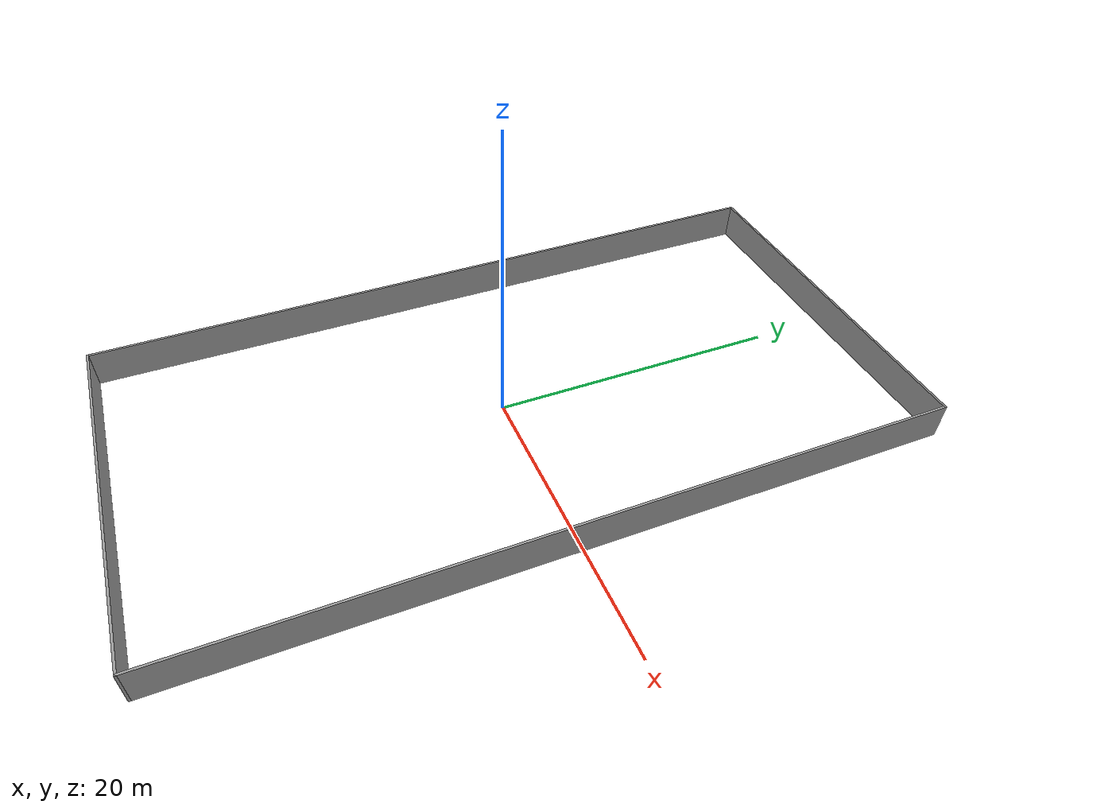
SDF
<?xml version='1.0'?>
<sdf version='1.6'>
  <model name='wall_25x50'>
    <pose frame=''>0 0 0 0 -0 0</pose>
    <link name='Wall_0'>
      <collision name='Wall_0_Collision'>
        <geometry>
          <box>
            <size>50.15 0.15 2.5</size>
          </box>
        </geometry>
        <pose frame=''>0 0 1.25 0 -0 0</pose>
      </collision>
      <visual name='Wall_0_Visual'>
        <pose frame=''>0 0 1.25 0 -0 0</pose>
        <geometry>
          <box>
            <size>50.15 0.15 2.5</size>
          </box>
        </geometry>
        <material>
          <script>
            <uri>file://media/materials/scripts/gazebo.material</uri>
            <name>Gazebo/Grey</name>
          </script>
          <ambient>1 1 1 1</ambient>
        </material>
        <meta>
          <layer>0</layer>
        </meta>
      </visual>
      <pose frame=''>-12.5 0 0 0 -0 1.5708</pose>
    </link>
    <link name='Wall_1'>
      <collision name='Wall_1_Collision'>
        <geometry>
          <box>
            <size>25.15 0.15 2.5</size>
          </box>
        </geometry>
        <pose frame=''>0 0 1.25 0 -0 0</pose>
      </collision>
      <visual name='Wall_1_Visual'>
        <pose frame=''>0 0 1.25 0 -0 0</pose>
        <geometry>
          <box>
            <size>25.15 0.15 2.5</size>
          </box>
        </geometry>
        <material>
          <script>
            <uri>file://media/materials/scripts/gazebo.material</uri>
            <name>Gazebo/Grey</name>
          </script>
          <ambient>1 1 1 1</ambient>
        </material>
        <meta>
          <layer>0</layer>
        </meta>
      </visual>
      <pose frame=''>0 25 0 0 -0 0</pose>
    </link>
    <link name='Wall_2'>
      <collision name='Wall_2_Collision'>
        <geometry>
          <box>
            <size>50.15 0.15 2.5</size>
          </box>
        </geometry>
        <pose frame=''>0 0 1.25 0 -0 0</pose>
      </collision>
      <visual name='Wall_2_Visual'>
        <pose frame=''>0 0 1.25 0 -0 0</pose>
        <geometry>
          <box>
            <size>50.15 0.15 2.5</size>
          </box>
        </geometry>
        <material>
          <script>
            <uri>file://media/materials/scripts/gazebo.material</uri>
            <name>Gazebo/Grey</name>
          </script>
          <ambient>1 1 1 1</ambient>
        </material>
        <meta>
          <layer>0</layer>
        </meta>
      </visual>
      <pose frame=''>12.5 0 0 0 -0 -1.5708</pose>
    </link>
    <link name='Wall_3'>
      <collision name='Wall_3_Collision'>
        <geometry>
          <box>
            <size>25.15 0.15 2.5</size>
          </box>
        </geometry>
        <pose frame=''>0 0 1.25 0 -0 0</pose>
      </collision>
      <visual name='Wall_3_Visual'>
        <pose frame=''>0 0 1.25 0 -0 0</pose>
        <geometry>
          <box>
            <size>25.15 0.15 2.5</size>
          </box>
        </geometry>
        <material>
          <script>
            <uri>file://media/materials/scripts/gazebo.material</uri>
            <name>Gazebo/Grey</name>
          </script>
          <ambient>1 1 1 1</ambient>
        </material>
        <meta>
          <layer>0</layer>
        </meta>
      </visual>
      <pose frame=''>0 -25 0 0 -0 3.14159</pose>
    </link>
    <static>1</static>
  </model>
</sdf>
